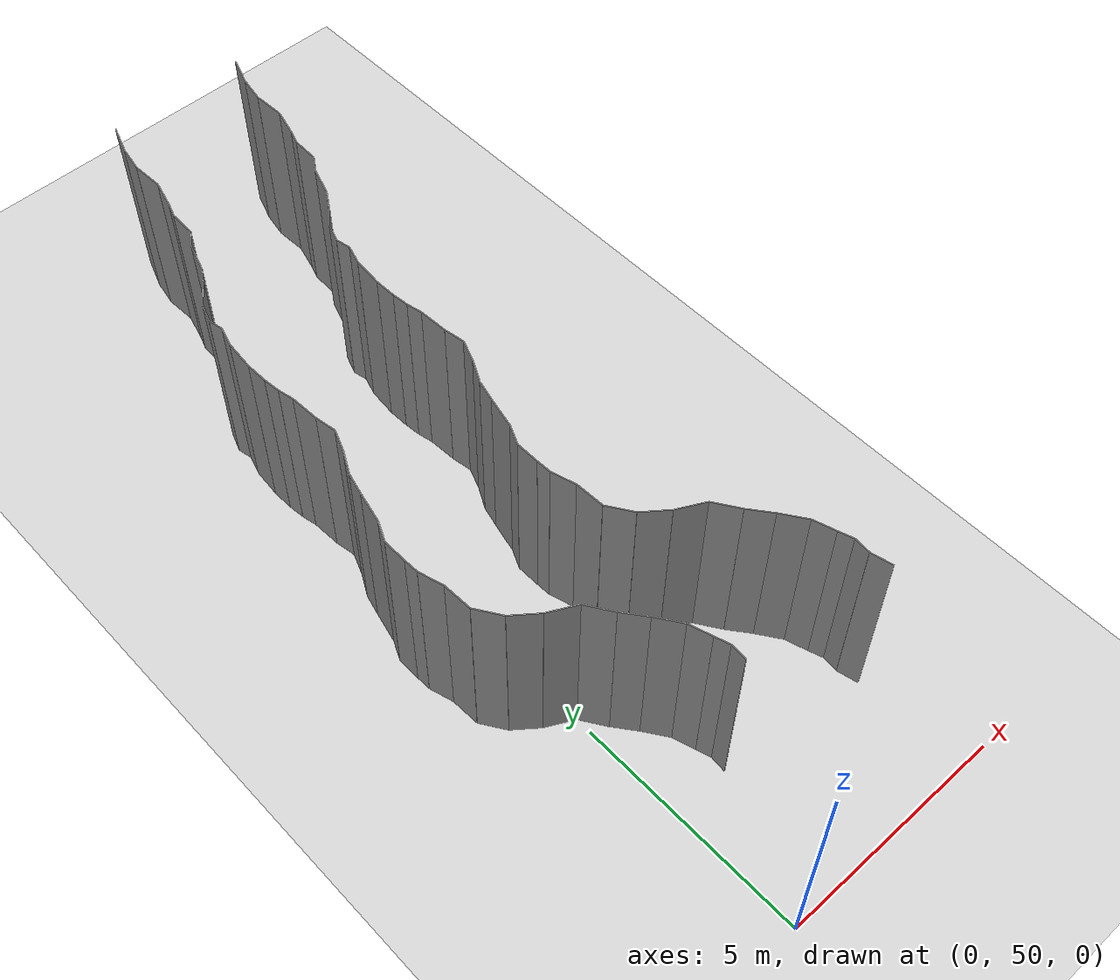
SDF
<sdf version="1.6">
 <world name="default">
  <model name="ground_plane">
   <static>1</static>
   <link name="link">
    <collision name="collision">
     <geometry><plane><normal>0 0 1</normal><size>200 200</size></plane></geometry>
     <surface><friction><ode><mu>100</mu><mu2>50</mu2></ode></friction></surface>
    </collision>
    <visual name="visual">
     <cast_shadows>0</cast_shadows>
     <geometry><plane><normal>0 0 1</normal><size>200 200</size></plane></geometry>
     <material>
      <script><uri>file://media/materials/scripts/gazebo.material</uri><name>Gazebo/Grey</name></script>
     </material>
    </visual>
   </link>
   <pose>0 100 0 0 -0 0</pose>
  </model>
  <model name="wall_225">
   <static>1</static>
   <pose>4.284840015227643 52.6012489202789 2 0 0 0.23058833678077686</pose>
   <link name="link">
    <collision name="collision"><geometry><box><size>0.02 0.454526532368 4</size></box></geometry></collision>
    <visual name="visual">
     <material>
      <script><name>Gazebo/Grey</name><uri>file://media/materials/scripts/gazebo.material</uri></script>
     </material>
     <geometry><box><size>0.02 0.454526532368 4</size></box></geometry>
    </visual>
   </link>
  </model>
  <model name="wall_226">
   <static>1</static>
   <pose>1.2480841859718759 52.9963820406396 2 0 0 -0.08710834320790582</pose>
   <link name="link">
    <collision name="collision"><geometry><box><size>0.02 0.349093671941 4</size></box></geometry></collision>
    <visual name="visual">
     <material>
      <script><name>Gazebo/Grey</name><uri>file://media/materials/scripts/gazebo.material</uri></script>
     </material>
     <geometry><box><size>0.02 0.349093671941 4</size></box></geometry>
    </visual>
   </link>
  </model>
  <model name="wall_227">
   <static>1</static>
   <pose>4.248084185971876 52.9963820406396 2 0 0 -0.08710834320790582</pose>
   <link name="link">
    <collision name="collision"><geometry><box><size>0.02 0.349093671941 4</size></box></geometry></collision>
    <visual name="visual">
     <material>
      <script><name>Gazebo/Grey</name><uri>file://media/materials/scripts/gazebo.material</uri></script>
     </material>
     <geometry><box><size>0.02 0.349093671941 4</size></box></geometry>
    </visual>
   </link>
  </model>
  <model name="wall_228">
   <static>1</static>
   <pose>1.2126762462406566 53.32029411449146 2 0 0 0.3252509699786831</pose>
   <link name="link">
    <collision name="collision"><geometry><box><size>0.02 0.316656182492 4</size></box></geometry></collision>
    <visual name="visual">
     <material>
      <script><name>Gazebo/Grey</name><uri>file://media/materials/scripts/gazebo.material</uri></script>
     </material>
     <geometry><box><size>0.02 0.316656182492 4</size></box></geometry>
    </visual>
   </link>
  </model>
  <model name="wall_229">
   <static>1</static>
   <pose>4.212676246240656 53.32029411449146 2 0 0 0.3252509699786831</pose>
   <link name="link">
    <collision name="collision"><geometry><box><size>0.02 0.316656182492 4</size></box></geometry></collision>
    <visual name="visual">
     <material>
      <script><name>Gazebo/Grey</name><uri>file://media/materials/scripts/gazebo.material</uri></script>
     </material>
     <geometry><box><size>0.02 0.316656182492 4</size></box></geometry>
    </visual>
   </link>
  </model>
  <model name="wall_230">
   <static>1</static>
   <pose>1.0893941842021748 53.70084352382923 2 0 0 0.3054540564190224</pose>
   <link name="link">
    <collision name="collision"><geometry><box><size>0.02 0.483422108263 4</size></box></geometry></collision>
    <visual name="visual">
     <material>
      <script><name>Gazebo/Grey</name><uri>file://media/materials/scripts/gazebo.material</uri></script>
     </material>
     <geometry><box><size>0.02 0.483422108263 4</size></box></geometry>
    </visual>
   </link>
  </model>
  <model name="wall_231">
   <static>1</static>
   <pose>4.089394184202175 53.70084352382923 2 0 0 0.3054540564190224</pose>
   <link name="link">
    <collision name="collision"><geometry><box><size>0.02 0.483422108263 4</size></box></geometry></collision>
    <visual name="visual">
     <material>
      <script><name>Gazebo/Grey</name><uri>file://media/materials/scripts/gazebo.material</uri></script>
     </material>
     <geometry><box><size>0.02 0.483422108263 4</size></box></geometry>
    </visual>
   </link>
  </model>
  <model name="wall_232">
   <static>1</static>
   <pose>0.8500264611369097 54.17239151616837 2 0 0 0.6050255382293486</pose>
   <link name="link">
    <collision name="collision"><geometry><box><size>0.02 0.586089393159 4</size></box></geometry></collision>
    <visual name="visual">
     <material>
      <script><name>Gazebo/Grey</name><uri>file://media/materials/scripts/gazebo.material</uri></script>
     </material>
     <geometry><box><size>0.02 0.586089393159 4</size></box></geometry>
    </visual>
   </link>
  </model>
  <model name="wall_233">
   <static>1</static>
   <pose>3.8500264611369097 54.17239151616837 2 0 0 0.6050255382293486</pose>
   <link name="link">
    <collision name="collision"><geometry><box><size>0.02 0.586089393159 4</size></box></geometry></collision>
    <visual name="visual">
     <material>
      <script><name>Gazebo/Grey</name><uri>file://media/materials/scripts/gazebo.material</uri></script>
     </material>
     <geometry><box><size>0.02 0.586089393159 4</size></box></geometry>
    </visual>
   </link>
  </model>
  <model name="wall_234">
   <static>1</static>
   <pose>0.512108124791644 54.63165043639537 2 0 0 0.6653185462518619</pose>
   <link name="link">
    <collision name="collision"><geometry><box><size>0.02 0.554792679324 4</size></box></geometry></collision>
    <visual name="visual">
     <material>
      <script><name>Gazebo/Grey</name><uri>file://media/materials/scripts/gazebo.material</uri></script>
     </material>
     <geometry><box><size>0.02 0.554792679324 4</size></box></geometry>
    </visual>
   </link>
  </model>
  <model name="wall_235">
   <static>1</static>
   <pose>3.512108124791644 54.63165043639537 2 0 0 0.6653185462518619</pose>
   <link name="link">
    <collision name="collision"><geometry><box><size>0.02 0.554792679324 4</size></box></geometry></collision>
    <visual name="visual">
     <material>
      <script><name>Gazebo/Grey</name><uri>file://media/materials/scripts/gazebo.material</uri></script>
     </material>
     <geometry><box><size>0.02 0.554792679324 4</size></box></geometry>
    </visual>
   </link>
  </model>
  <model name="wall_236">
   <static>1</static>
   <pose>0.1738914635165309 55.10274200913919 2 0 0 0.5836229080192396</pose>
   <link name="link">
    <collision name="collision"><geometry><box><size>0.02 0.606031974803 4</size></box></geometry></collision>
    <visual name="visual">
     <material>
      <script><name>Gazebo/Grey</name><uri>file://media/materials/scripts/gazebo.material</uri></script>
     </material>
     <geometry><box><size>0.02 0.606031974803 4</size></box></geometry>
    </visual>
   </link>
  </model>
  <model name="wall_237">
   <static>1</static>
   <pose>3.1738914635165307 55.10274200913919 2 0 0 0.5836229080192396</pose>
   <link name="link">
    <collision name="collision"><geometry><box><size>0.02 0.606031974803 4</size></box></geometry></collision>
    <visual name="visual">
     <material>
      <script><name>Gazebo/Grey</name><uri>file://media/materials/scripts/gazebo.material</uri></script>
     </material>
     <geometry><box><size>0.02 0.606031974803 4</size></box></geometry>
    </visual>
   </link>
  </model>
  <model name="wall_238">
   <static>1</static>
   <pose>-0.27576418296230154 55.50294593839325 2 0 0 1.0902949579609134</pose>
   <link name="link">
    <collision name="collision"><geometry><box><size>0.02 0.637551101569 4</size></box></geometry></collision>
    <visual name="visual">
     <material>
      <script><name>Gazebo/Grey</name><uri>file://media/materials/scripts/gazebo.material</uri></script>
     </material>
     <geometry><box><size>0.02 0.637551101569 4</size></box></geometry>
    </visual>
   </link>
  </model>
  <model name="wall_239">
   <static>1</static>
   <pose>2.7242358170376986 55.50294593839325 2 0 0 1.0902949579609134</pose>
   <link name="link">
    <collision name="collision"><geometry><box><size>0.02 0.637551101569 4</size></box></geometry></collision>
    <visual name="visual">
     <material>
      <script><name>Gazebo/Grey</name><uri>file://media/materials/scripts/gazebo.material</uri></script>
     </material>
     <geometry><box><size>0.02 0.637551101569 4</size></box></geometry>
    </visual>
   </link>
  </model>
  <model name="wall_240">
   <static>1</static>
   <pose>-0.8004523722877648 55.84167202183364 2 0 0 0.9016925800515497</pose>
   <link name="link">
    <collision name="collision"><geometry><box><size>0.02 0.617074320041 4</size></box></geometry></collision>
    <visual name="visual">
     <material>
      <script><name>Gazebo/Grey</name><uri>file://media/materials/scripts/gazebo.material</uri></script>
     </material>
     <geometry><box><size>0.02 0.617074320041 4</size></box></geometry>
    </visual>
   </link>
  </model>
  <model name="wall_241">
   <static>1</static>
   <pose>2.199547627712235 55.84167202183364 2 0 0 0.9016925800515497</pose>
   <link name="link">
    <collision name="collision"><geometry><box><size>0.02 0.617074320041 4</size></box></geometry></collision>
    <visual name="visual">
     <material>
      <script><name>Gazebo/Grey</name><uri>file://media/materials/scripts/gazebo.material</uri></script>
     </material>
     <geometry><box><size>0.02 0.617074320041 4</size></box></geometry>
    </visual>
   </link>
  </model>
  <model name="wall_242">
   <static>1</static>
   <pose>-1.2048985571953268 56.27993744419171 2 0 0 0.5819393599528128</pose>
   <link name="link">
    <collision name="collision"><geometry><box><size>0.02 0.591059392593 4</size></box></geometry></collision>
    <visual name="visual">
     <material>
      <script><name>Gazebo/Grey</name><uri>file://media/materials/scripts/gazebo.material</uri></script>
     </material>
     <geometry><box><size>0.02 0.591059392593 4</size></box></geometry>
    </visual>
   </link>
  </model>
  <model name="wall_243">
   <static>1</static>
   <pose>1.7951014428046732 56.27993744419171 2 0 0 0.5819393599528128</pose>
   <link name="link">
    <collision name="collision"><geometry><box><size>0.02 0.591059392593 4</size></box></geometry></collision>
    <visual name="visual">
     <material>
      <script><name>Gazebo/Grey</name><uri>file://media/materials/scripts/gazebo.material</uri></script>
     </material>
     <geometry><box><size>0.02 0.591059392593 4</size></box></geometry>
    </visual>
   </link>
  </model>
  <model name="wall_244">
   <static>1</static>
   <pose>-1.3811726510334967 56.83368045074186 2 0 0 0.04506407966400449</pose>
   <link name="link">
    <collision name="collision"><geometry><box><size>0.02 0.614339710015 4</size></box></geometry></collision>
    <visual name="visual">
     <material>
      <script><name>Gazebo/Grey</name><uri>file://media/materials/scripts/gazebo.material</uri></script>
     </material>
     <geometry><box><size>0.02 0.614339710015 4</size></box></geometry>
    </visual>
   </link>
  </model>
  <model name="wall_245">
   <static>1</static>
   <pose>1.6188273489665033 56.83368045074186 2 0 0 0.04506407966400449</pose>
   <link name="link">
    <collision name="collision"><geometry><box><size>0.02 0.614339710015 4</size></box></geometry></collision>
    <visual name="visual">
     <material>
      <script><name>Gazebo/Grey</name><uri>file://media/materials/scripts/gazebo.material</uri></script>
     </material>
     <geometry><box><size>0.02 0.614339710015 4</size></box></geometry>
    </visual>
   </link>
  </model>
  <model name="wall_246">
   <static>1</static>
   <pose>-1.4695434422560059 57.394700957384345 2 0 0 0.28525267818266764</pose>
   <link name="link">
    <collision name="collision"><geometry><box><size>0.02 0.529731116791 4</size></box></geometry></collision>
    <visual name="visual">
     <material>
      <script><name>Gazebo/Grey</name><uri>file://media/materials/scripts/gazebo.material</uri></script>
     </material>
     <geometry><box><size>0.02 0.529731116791 4</size></box></geometry>
    </visual>
   </link>
  </model>
  <model name="wall_247">
   <static>1</static>
   <pose>1.5304565577439941 57.394700957384345 2 0 0 0.28525267818266764</pose>
   <link name="link">
    <collision name="collision"><geometry><box><size>0.02 0.529731116791 4</size></box></geometry></collision>
    <visual name="visual">
     <material>
      <script><name>Gazebo/Grey</name><uri>file://media/materials/scripts/gazebo.material</uri></script>
     </material>
     <geometry><box><size>0.02 0.529731116791 4</size></box></geometry>
    </visual>
   </link>
  </model>
  <model name="wall_248">
   <static>1</static>
   <pose>-1.5504510946368477 57.80353872312788 2 0 0 0.04118886019443086</pose>
   <link name="link">
    <collision name="collision"><geometry><box><size>0.02 0.30961313771 4</size></box></geometry></collision>
    <visual name="visual">
     <material>
      <script><name>Gazebo/Grey</name><uri>file://media/materials/scripts/gazebo.material</uri></script>
     </material>
     <geometry><box><size>0.02 0.30961313771 4</size></box></geometry>
    </visual>
   </link>
  </model>
  <model name="wall_249">
   <static>1</static>
   <pose>1.4495489053631523 57.80353872312788 2 0 0 0.04118886019443086</pose>
   <link name="link">
    <collision name="collision"><geometry><box><size>0.02 0.30961313771 4</size></box></geometry></collision>
    <visual name="visual">
     <material>
      <script><name>Gazebo/Grey</name><uri>file://media/materials/scripts/gazebo.material</uri></script>
     </material>
     <geometry><box><size>0.02 0.30961313771 4</size></box></geometry>
    </visual>
   </link>
  </model>
  <model name="wall_250">
   <static>1</static>
   <pose>-1.5599224295789282 58.21063861591846 2 0 0 0.012267726553919119</pose>
   <link name="link">
    <collision name="collision"><geometry><box><size>0.02 0.504887235084 4</size></box></geometry></collision>
    <visual name="visual">
     <material>
      <script><name>Gazebo/Grey</name><uri>file://media/materials/scripts/gazebo.material</uri></script>
     </material>
     <geometry><box><size>0.02 0.504887235084 4</size></box></geometry>
    </visual>
   </link>
  </model>
  <model name="wall_251">
   <static>1</static>
   <pose>1.4400775704210718 58.21063861591846 2 0 0 0.012267726553919119</pose>
   <link name="link">
    <collision name="collision"><geometry><box><size>0.02 0.504887235084 4</size></box></geometry></collision>
    <visual name="visual">
     <material>
      <script><name>Gazebo/Grey</name><uri>file://media/materials/scripts/gazebo.material</uri></script>
     </material>
     <geometry><box><size>0.02 0.504887235084 4</size></box></geometry>
    </visual>
   </link>
  </model>
  <model name="wall_252">
   <static>1</static>
   <pose>-1.4712439264021566 58.66395236187386 2 0 0 -0.4285322172117744</pose>
   <link name="link">
    <collision name="collision"><geometry><box><size>0.02 0.441720057462 4</size></box></geometry></collision>
    <visual name="visual">
     <material>
      <script><name>Gazebo/Grey</name><uri>file://media/materials/scripts/gazebo.material</uri></script>
     </material>
     <geometry><box><size>0.02 0.441720057462 4</size></box></geometry>
    </visual>
   </link>
  </model>
  <model name="wall_253">
   <static>1</static>
   <pose>1.5287560735978434 58.66395236187386 2 0 0 -0.4285322172117744</pose>
   <link name="link">
    <collision name="collision"><geometry><box><size>0.02 0.441720057462 4</size></box></geometry></collision>
    <visual name="visual">
     <material>
      <script><name>Gazebo/Grey</name><uri>file://media/materials/scripts/gazebo.material</uri></script>
     </material>
     <geometry><box><size>0.02 0.441720057462 4</size></box></geometry>
    </visual>
   </link>
  </model>
  <model name="wall_254">
   <static>1</static>
   <pose>-1.3053801292813767 59.18867159610128 2 0 0 -0.22491703335269628</pose>
   <link name="link">
    <collision name="collision"><geometry><box><size>0.02 0.664394582815 4</size></box></geometry></collision>
    <visual name="visual">
     <material>
      <script><name>Gazebo/Grey</name><uri>file://media/materials/scripts/gazebo.material</uri></script>
     </material>
     <geometry><box><size>0.02 0.664394582815 4</size></box></geometry>
    </visual>
   </link>
  </model>
  <model name="wall_255">
   <static>1</static>
   <pose>1.6946198707186233 59.18867159610128 2 0 0 -0.22491703335269628</pose>
   <link name="link">
    <collision name="collision"><geometry><box><size>0.02 0.664394582815 4</size></box></geometry></collision>
    <visual name="visual">
     <material>
      <script><name>Gazebo/Grey</name><uri>file://media/materials/scripts/gazebo.material</uri></script>
     </material>
     <geometry><box><size>0.02 0.664394582815 4</size></box></geometry>
    </visual>
   </link>
  </model>
  <model name="wall_256">
   <static>1</static>
   <pose>-1.1758586618869764 59.73366684135114 2 0 0 -0.24558167214216473</pose>
   <link name="link">
    <collision name="collision"><geometry><box><size>0.02 0.456012434405 4</size></box></geometry></collision>
    <visual name="visual">
     <material>
      <script><name>Gazebo/Grey</name><uri>file://media/materials/scripts/gazebo.material</uri></script>
     </material>
     <geometry><box><size>0.02 0.456012434405 4</size></box></geometry>
    </visual>
   </link>
  </model>
  <model name="wall_257">
   <static>1</static>
   <pose>1.8241413381130236 59.73366684135114 2 0 0 -0.24558167214216473</pose>
   <link name="link">
    <collision name="collision"><geometry><box><size>0.02 0.456012434405 4</size></box></geometry></collision>
    <visual name="visual">
     <material>
      <script><name>Gazebo/Grey</name><uri>file://media/materials/scripts/gazebo.material</uri></script>
     </material>
     <geometry><box><size>0.02 0.456012434405 4</size></box></geometry>
    </visual>
   </link>
  </model>
  <model name="wall_258">
   <static>1</static>
   <pose>-1.0009854096825692 60.185745836280425 2 0 0 -0.4773523653224694</pose>
   <link name="link">
    <collision name="collision"><geometry><box><size>0.02 0.519950702471 4</size></box></geometry></collision>
    <visual name="visual">
     <material>
      <script><name>Gazebo/Grey</name><uri>file://media/materials/scripts/gazebo.material</uri></script>
     </material>
     <geometry><box><size>0.02 0.519950702471 4</size></box></geometry>
    </visual>
   </link>
  </model>
  <model name="wall_259">
   <static>1</static>
   <pose>1.9990145903174308 60.185745836280425 2 0 0 -0.4773523653224694</pose>
   <link name="link">
    <collision name="collision"><geometry><box><size>0.02 0.519950702471 4</size></box></geometry></collision>
    <visual name="visual">
     <material>
      <script><name>Gazebo/Grey</name><uri>file://media/materials/scripts/gazebo.material</uri></script>
     </material>
     <geometry><box><size>0.02 0.519950702471 4</size></box></geometry>
    </visual>
   </link>
  </model>
  <model name="wall_260">
   <static>1</static>
   <pose>-0.795001400952154 60.6406684663699 2 0 0 -0.36867616442483037</pose>
   <link name="link">
    <collision name="collision"><geometry><box><size>0.02 0.480290544865 4</size></box></geometry></collision>
    <visual name="visual">
     <material>
      <script><name>Gazebo/Grey</name><uri>file://media/materials/scripts/gazebo.material</uri></script>
     </material>
     <geometry><box><size>0.02 0.480290544865 4</size></box></geometry>
    </visual>
   </link>
  </model>
  <model name="wall_261">
   <static>1</static>
   <pose>2.204998599047846 60.6406684663699 2 0 0 -0.36867616442483037</pose>
   <link name="link">
    <collision name="collision"><geometry><box><size>0.02 0.480290544865 4</size></box></geometry></collision>
    <visual name="visual">
     <material>
      <script><name>Gazebo/Grey</name><uri>file://media/materials/scripts/gazebo.material</uri></script>
     </material>
     <geometry><box><size>0.02 0.480290544865 4</size></box></geometry>
    </visual>
   </link>
  </model>
  <model name="wall_262">
   <static>1</static>
   <pose>-0.7454761163296679 61.0848629757875 2 0 0 0.16656615380876297</pose>
   <link name="link">
    <collision name="collision"><geometry><box><size>0.02 0.446551799068 4</size></box></geometry></collision>
    <visual name="visual">
     <material>
      <script><name>Gazebo/Grey</name><uri>file://media/materials/scripts/gazebo.material</uri></script>
     </material>
     <geometry><box><size>0.02 0.446551799068 4</size></box></geometry>
    </visual>
   </link>
  </model>
  <model name="wall_263">
   <static>1</static>
   <pose>2.2545238836703323 61.0848629757875 2 0 0 0.16656615380876297</pose>
   <link name="link">
    <collision name="collision"><geometry><box><size>0.02 0.446551799068 4</size></box></geometry></collision>
    <visual name="visual">
     <material>
      <script><name>Gazebo/Grey</name><uri>file://media/materials/scripts/gazebo.material</uri></script>
     </material>
     <geometry><box><size>0.02 0.446551799068 4</size></box></geometry>
    </visual>
   </link>
  </model>
  <model name="wall_264">
   <static>1</static>
   <pose>-0.7998727983571556 61.61252958839142 2 0 0 0.056457940355019456</pose>
   <link name="link">
    <collision name="collision"><geometry><box><size>0.02 0.615943145488 4</size></box></geometry></collision>
    <visual name="visual">
     <material>
      <script><name>Gazebo/Grey</name><uri>file://media/materials/scripts/gazebo.material</uri></script>
     </material>
     <geometry><box><size>0.02 0.615943145488 4</size></box></geometry>
    </visual>
   </link>
  </model>
  <model name="wall_265">
   <static>1</static>
   <pose>2.2001272016428444 61.61252958839142 2 0 0 0.056457940355019456</pose>
   <link name="link">
    <collision name="collision"><geometry><box><size>0.02 0.615943145488 4</size></box></geometry></collision>
    <visual name="visual">
     <material>
      <script><name>Gazebo/Grey</name><uri>file://media/materials/scripts/gazebo.material</uri></script>
     </material>
     <geometry><box><size>0.02 0.615943145488 4</size></box></geometry>
    </visual>
   </link>
  </model>
  <model name="wall_266">
   <static>1</static>
   <pose>-0.8527899366477022 62.084895786236544 2 0 0 0.21228963845118595</pose>
   <link name="link">
    <collision name="collision"><geometry><box><size>0.02 0.337343658233 4</size></box></geometry></collision>
    <visual name="visual">
     <material>
      <script><name>Gazebo/Grey</name><uri>file://media/materials/scripts/gazebo.material</uri></script>
     </material>
     <geometry><box><size>0.02 0.337343658233 4</size></box></geometry>
    </visual>
   </link>
  </model>
  <model name="wall_267">
   <static>1</static>
   <pose>2.147210063352298 62.084895786236544 2 0 0 0.21228963845118595</pose>
   <link name="link">
    <collision name="collision"><geometry><box><size>0.02 0.337343658233 4</size></box></geometry></collision>
    <visual name="visual">
     <material>
      <script><name>Gazebo/Grey</name><uri>file://media/materials/scripts/gazebo.material</uri></script>
     </material>
     <geometry><box><size>0.02 0.337343658233 4</size></box></geometry>
    </visual>
   </link>
  </model>
  <model name="wall_268">
   <static>1</static>
   <pose>-0.9077063818844228 62.425222895681884 2 0 0 0.11000393846213914</pose>
   <link name="link">
    <collision name="collision"><geometry><box><size>0.02 0.35301732509 4</size></box></geometry></collision>
    <visual name="visual">
     <material>
      <script><name>Gazebo/Grey</name><uri>file://media/materials/scripts/gazebo.material</uri></script>
     </material>
     <geometry><box><size>0.02 0.35301732509 4</size></box></geometry>
    </visual>
   </link>
  </model>
  <model name="wall_269">
   <static>1</static>
   <pose>2.092293618115577 62.425222895681884 2 0 0 0.11000393846213914</pose>
   <link name="link">
    <collision name="collision"><geometry><box><size>0.02 0.35301732509 4</size></box></geometry></collision>
    <visual name="visual">
     <material>
      <script><name>Gazebo/Grey</name><uri>file://media/materials/scripts/gazebo.material</uri></script>
     </material>
     <geometry><box><size>0.02 0.35301732509 4</size></box></geometry>
    </visual>
   </link>
  </model>
  <model name="wall_270">
   <static>1</static>
   <pose>-0.9339535722461338 62.828881762584174 2 0 0 0.03009242136829753</pose>
   <link name="link">
    <collision name="collision"><geometry><box><size>0.02 0.456640904336 4</size></box></geometry></collision>
    <visual name="visual">
     <material>
      <script><name>Gazebo/Grey</name><uri>file://media/materials/scripts/gazebo.material</uri></script>
     </material>
     <geometry><box><size>0.02 0.456640904336 4</size></box></geometry>
    </visual>
   </link>
  </model>
  <model name="wall_271">
   <static>1</static>
   <pose>2.066046427753866 62.828881762584174 2 0 0 0.03009242136829753</pose>
   <link name="link">
    <collision name="collision"><geometry><box><size>0.02 0.456640904336 4</size></box></geometry></collision>
    <visual name="visual">
     <material>
      <script><name>Gazebo/Grey</name><uri>file://media/materials/scripts/gazebo.material</uri></script>
     </material>
     <geometry><box><size>0.02 0.456640904336 4</size></box></geometry>
    </visual>
   </link>
  </model>
  <model name="wall_272">
   <static>1</static>
   <pose>-0.9139267936153354 63.375600284476 2 0 0 -0.08424700925161492</pose>
   <link name="link">
    <collision name="collision"><geometry><box><size>0.02 0.639270167538 4</size></box></geometry></collision>
    <visual name="visual">
     <material>
      <script><name>Gazebo/Grey</name><uri>file://media/materials/scripts/gazebo.material</uri></script>
     </material>
     <geometry><box><size>0.02 0.639270167538 4</size></box></geometry>
    </visual>
   </link>
  </model>
  <model name="wall_273">
   <static>1</static>
   <pose>2.0860732063846648 63.375600284476 2 0 0 -0.08424700925161492</pose>
   <link name="link">
    <collision name="collision"><geometry><box><size>0.02 0.639270167538 4</size></box></geometry></collision>
    <visual name="visual">
     <material>
      <script><name>Gazebo/Grey</name><uri>file://media/materials/scripts/gazebo.material</uri></script>
     </material>
     <geometry><box><size>0.02 0.639270167538 4</size></box></geometry>
    </visual>
   </link>
  </model>
  <model name="wall_274">
   <static>1</static>
   <pose>-0.8256707384533419 63.89529339444441 2 0 0 -0.29602005656267905</pose>
   <link name="link">
    <collision name="collision"><geometry><box><size>0.02 0.420680821025 4</size></box></geometry></collision>
    <visual name="visual">
     <material>
      <script><name>Gazebo/Grey</name><uri>file://media/materials/scripts/gazebo.material</uri></script>
     </material>
     <geometry><box><size>0.02 0.420680821025 4</size></box></geometry>
    </visual>
   </link>
  </model>
  <model name="wall_275">
   <static>1</static>
   <pose>2.1743292615466583 63.89529339444441 2 0 0 -0.29602005656267905</pose>
   <link name="link">
    <collision name="collision"><geometry><box><size>0.02 0.420680821025 4</size></box></geometry></collision>
    <visual name="visual">
     <material>
      <script><name>Gazebo/Grey</name><uri>file://media/materials/scripts/gazebo.material</uri></script>
     </material>
     <geometry><box><size>0.02 0.420680821025 4</size></box></geometry>
    </visual>
   </link>
  </model>
  <model name="wall_276">
   <static>1</static>
   <pose>-0.7949515608201139 64.25256441173359 2 0 0 0.19384796335339813</pose>
   <link name="link">
    <collision name="collision"><geometry><box><size>0.02 0.318116947552 4</size></box></geometry></collision>
    <visual name="visual">
     <material>
      <script><name>Gazebo/Grey</name><uri>file://media/materials/scripts/gazebo.material</uri></script>
     </material>
     <geometry><box><size>0.02 0.318116947552 4</size></box></geometry>
    </visual>
   </link>
  </model>
  <model name="wall_277">
   <static>1</static>
   <pose>2.205048439179886 64.25256441173359 2 0 0 0.19384796335339813</pose>
   <link name="link">
    <collision name="collision"><geometry><box><size>0.02 0.318116947552 4</size></box></geometry></collision>
    <visual name="visual">
     <material>
      <script><name>Gazebo/Grey</name><uri>file://media/materials/scripts/gazebo.material</uri></script>
     </material>
     <geometry><box><size>0.02 0.318116947552 4</size></box></geometry>
    </visual>
   </link>
  </model>
  <model name="wall_278">
   <static>1</static>
   <pose>-0.7554792327912162 64.60774580650738 2 0 0 -0.33858426598408736</pose>
   <link name="link">
    <collision name="collision"><geometry><box><size>0.02 0.4221725844 4</size></box></geometry></collision>
    <visual name="visual">
     <material>
      <script><name>Gazebo/Grey</name><uri>file://media/materials/scripts/gazebo.material</uri></script>
     </material>
     <geometry><box><size>0.02 0.4221725844 4</size></box></geometry>
    </visual>
   </link>
  </model>
  <model name="wall_279">
   <static>1</static>
   <pose>2.2445207672087837 64.60774580650738 2 0 0 -0.33858426598408736</pose>
   <link name="link">
    <collision name="collision"><geometry><box><size>0.02 0.4221725844 4</size></box></geometry></collision>
    <visual name="visual">
     <material>
      <script><name>Gazebo/Grey</name><uri>file://media/materials/scripts/gazebo.material</uri></script>
     </material>
     <geometry><box><size>0.02 0.4221725844 4</size></box></geometry>
    </visual>
   </link>
  </model>
  <model name="wall_280">
   <static>1</static>
   <pose>-0.5202100564893786 65.02394257256307 2 0 0 -0.6503504112130915</pose>
   <link name="link">
    <collision name="collision"><geometry><box><size>0.02 0.545552059934 4</size></box></geometry></collision>
    <visual name="visual">
     <material>
      <script><name>Gazebo/Grey</name><uri>file://media/materials/scripts/gazebo.material</uri></script>
     </material>
     <geometry><box><size>0.02 0.545552059934 4</size></box></geometry>
    </visual>
   </link>
  </model>
  <model name="wall_281">
   <static>1</static>
   <pose>2.4797899435106214 65.02394257256307 2 0 0 -0.6503504112130915</pose>
   <link name="link">
    <collision name="collision"><geometry><box><size>0.02 0.545552059934 4</size></box></geometry></collision>
    <visual name="visual">
     <material>
      <script><name>Gazebo/Grey</name><uri>file://media/materials/scripts/gazebo.material</uri></script>
     </material>
     <geometry><box><size>0.02 0.545552059934 4</size></box></geometry>
    </visual>
   </link>
  </model>
  <model name="wall_282">
   <static>1</static>
   <pose>-0.25767255216397444 65.39773278993212 2 0 0 -0.5560546738526079</pose>
   <link name="link">
    <collision name="collision"><geometry><box><size>0.02 0.368979963516 4</size></box></geometry></collision>
    <visual name="visual">
     <material>
      <script><name>Gazebo/Grey</name><uri>file://media/materials/scripts/gazebo.material</uri></script>
     </material>
     <geometry><box><size>0.02 0.368979963516 4</size></box></geometry>
    </visual>
   </link>
  </model>
  <model name="wall_283">
   <static>1</static>
   <pose>2.7423274478360256 65.39773278993212 2 0 0 -0.5560546738526079</pose>
   <link name="link">
    <collision name="collision"><geometry><box><size>0.02 0.368979963516 4</size></box></geometry></collision>
    <visual name="visual">
     <material>
      <script><name>Gazebo/Grey</name><uri>file://media/materials/scripts/gazebo.material</uri></script>
     </material>
     <geometry><box><size>0.02 0.368979963516 4</size></box></geometry>
    </visual>
   </link>
  </model>
  <model name="wall_284">
   <static>1</static>
   <pose>-0.05820579847689225 65.86215018996083 2 0 0 -0.3203217641178627</pose>
   <link name="link">
    <collision name="collision"><geometry><box><size>0.02 0.648426569699 4</size></box></geometry></collision>
    <visual name="visual">
     <material>
      <script><name>Gazebo/Grey</name><uri>file://media/materials/scripts/gazebo.material</uri></script>
     </material>
     <geometry><box><size>0.02 0.648426569699 4</size></box></geometry>
    </visual>
   </link>
  </model>
  <model name="wall_285">
   <static>1</static>
   <pose>2.9417942015231078 65.86215018996083 2 0 0 -0.3203217641178627</pose>
   <link name="link">
    <collision name="collision"><geometry><box><size>0.02 0.648426569699 4</size></box></geometry></collision>
    <visual name="visual">
     <material>
      <script><name>Gazebo/Grey</name><uri>file://media/materials/scripts/gazebo.material</uri></script>
     </material>
     <geometry><box><size>0.02 0.648426569699 4</size></box></geometry>
    </visual>
   </link>
  </model>
  <model name="wall_286">
   <static>1</static>
   <pose>0.14779228864985314 66.3272846424998 2 0 0 -0.5834620635535538</pose>
   <link name="link">
    <collision name="collision"><geometry><box><size>0.02 0.377234676112 4</size></box></geometry></collision>
    <visual name="visual">
     <material>
      <script><name>Gazebo/Grey</name><uri>file://media/materials/scripts/gazebo.material</uri></script>
     </material>
     <geometry><box><size>0.02 0.377234676112 4</size></box></geometry>
    </visual>
   </link>
  </model>
  <model name="wall_287">
   <static>1</static>
   <pose>3.1477922886498533 66.3272846424998 2 0 0 -0.5834620635535538</pose>
   <link name="link">
    <collision name="collision"><geometry><box><size>0.02 0.377234676112 4</size></box></geometry></collision>
    <visual name="visual">
     <material>
      <script><name>Gazebo/Grey</name><uri>file://media/materials/scripts/gazebo.material</uri></script>
     </material>
     <geometry><box><size>0.02 0.377234676112 4</size></box></geometry>
    </visual>
   </link>
  </model>
  <model name="wall_288">
   <static>1</static>
   <pose>0.2588731249921135 66.77021381696309 2 0 0 -0.025101587973165647</pose>
   <link name="link">
    <collision name="collision"><geometry><box><size>0.02 0.571213195009 4</size></box></geometry></collision>
    <visual name="visual">
     <material>
      <script><name>Gazebo/Grey</name><uri>file://media/materials/scripts/gazebo.material</uri></script>
     </material>
     <geometry><box><size>0.02 0.571213195009 4</size></box></geometry>
    </visual>
   </link>
  </model>
  <model name="wall_289">
   <static>1</static>
   <pose>3.2588731249921135 66.77021381696309 2 0 0 -0.025101587973165647</pose>
   <link name="link">
    <collision name="collision"><geometry><box><size>0.02 0.571213195009 4</size></box></geometry></collision>
    <visual name="visual">
     <material>
      <script><name>Gazebo/Grey</name><uri>file://media/materials/scripts/gazebo.material</uri></script>
     </material>
     <geometry><box><size>0.02 0.571213195009 4</size></box></geometry>
    </visual>
   </link>
  </model>
  <model name="wall_290">
   <static>1</static>
   <pose>0.3184295462209862 67.20555002130155 2 0 0 -0.33638426427270685</pose>
   <link name="link">
    <collision name="collision"><geometry><box><size>0.02 0.317429733107 4</size></box></geometry></collision>
    <visual name="visual">
     <material>
      <script><name>Gazebo/Grey</name><uri>file://media/materials/scripts/gazebo.material</uri></script>
     </material>
     <geometry><box><size>0.02 0.317429733107 4</size></box></geometry>
    </visual>
   </link>
  </model>
  <model name="wall_291">
   <static>1</static>
   <pose>3.3184295462209863 67.20555002130155 2 0 0 -0.33638426427270685</pose>
   <link name="link">
    <collision name="collision"><geometry><box><size>0.02 0.317429733107 4</size></box></geometry></collision>
    <visual name="visual">
     <material>
      <script><name>Gazebo/Grey</name><uri>file://media/materials/scripts/gazebo.material</uri></script>
     </material>
     <geometry><box><size>0.02 0.317429733107 4</size></box></geometry>
    </visual>
   </link>
  </model>
  <model name="wall_292">
   <static>1</static>
   <pose>0.4515973388934636 67.65694665910002 2 0 0 -0.2617142107355933</pose>
   <link name="link">
    <collision name="collision"><geometry><box><size>0.02 0.624416838045 4</size></box></geometry></collision>
    <visual name="visual">
     <material>
      <script><name>Gazebo/Grey</name><uri>file://media/materials/scripts/gazebo.material</uri></script>
     </material>
     <geometry><box><size>0.02 0.624416838045 4</size></box></geometry>
    </visual>
   </link>
  </model>
  <model name="wall_293">
   <static>1</static>
   <pose>3.4515973388934635 67.65694665910002 2 0 0 -0.2617142107355933</pose>
   <link name="link">
    <collision name="collision"><geometry><box><size>0.02 0.624416838045 4</size></box></geometry></collision>
    <visual name="visual">
     <material>
      <script><name>Gazebo/Grey</name><uri>file://media/materials/scripts/gazebo.material</uri></script>
     </material>
     <geometry><box><size>0.02 0.624416838045 4</size></box></geometry>
    </visual>
   </link>
  </model>
  <model name="wall_294">
   <static>1</static>
   <pose>0.5152946064352367 68.29701973188853 2 0 0 0.050423194043520435</pose>
   <link name="link">
    <collision name="collision"><geometry><box><size>0.02 0.67785357026 4</size></box></geometry></collision>
    <visual name="visual">
     <material>
      <script><name>Gazebo/Grey</name><uri>file://media/materials/scripts/gazebo.material</uri></script>
     </material>
     <geometry><box><size>0.02 0.67785357026 4</size></box></geometry>
    </visual>
   </link>
  </model>
  <model name="wall_295">
   <static>1</static>
   <pose>3.5152946064352366 68.29701973188853 2 0 0 0.050423194043520435</pose>
   <link name="link">
    <collision name="collision"><geometry><box><size>0.02 0.67785357026 4</size></box></geometry></collision>
    <visual name="visual">
     <material>
      <script><name>Gazebo/Grey</name><uri>file://media/materials/scripts/gazebo.material</uri></script>
     </material>
     <geometry><box><size>0.02 0.67785357026 4</size></box></geometry>
    </visual>
   </link>
  </model>
  <model name="wall_296">
   <static>1</static>
   <pose>0.5493444393386219 68.91844600025217 2 0 0 -0.17879438885143256</pose>
   <link name="link">
    <collision name="collision"><geometry><box><size>0.02 0.575027116799 4</size></box></geometry></collision>
    <visual name="visual">
     <material>
      <script><name>Gazebo/Grey</name><uri>file://media/materials/scripts/gazebo.material</uri></script>
     </material>
     <geometry><box><size>0.02 0.575027116799 4</size></box></geometry>
    </visual>
   </link>
  </model>
  <model name="wall_297">
   <static>1</static>
   <pose>3.549344439338622 68.91844600025217 2 0 0 -0.17879438885143256</pose>
   <link name="link">
    <collision name="collision"><geometry><box><size>0.02 0.575027116799 4</size></box></geometry></collision>
    <visual name="visual">
     <material>
      <script><name>Gazebo/Grey</name><uri>file://media/materials/scripts/gazebo.material</uri></script>
     </material>
     <geometry><box><size>0.02 0.575027116799 4</size></box></geometry>
    </visual>
   </link>
  </model>
  <model name="wall_298">
   <static>1</static>
   <pose>0.7121985500470199 69.5203612041978 2 0 0 -0.3368898912687648</pose>
   <link name="link">
    <collision name="collision"><geometry><box><size>0.02 0.67596789338 4</size></box></geometry></collision>
    <visual name="visual">
     <material>
      <script><name>Gazebo/Grey</name><uri>file://media/materials/scripts/gazebo.material</uri></script>
     </material>
     <geometry><box><size>0.02 0.67596789338 4</size></box></geometry>
    </visual>
   </link>
  </model>
  <model name="wall_299">
   <static>1</static>
   <pose>3.71219855004702 69.5203612041978 2 0 0 -0.3368898912687648</pose>
   <link name="link">
    <collision name="collision"><geometry><box><size>0.02 0.67596789338 4</size></box></geometry></collision>
    <visual name="visual">
     <material>
      <script><name>Gazebo/Grey</name><uri>file://media/materials/scripts/gazebo.material</uri></script>
     </material>
     <geometry><box><size>0.02 0.67596789338 4</size></box></geometry>
    </visual>
   </link>
  </model>
 </world>
</sdf>
